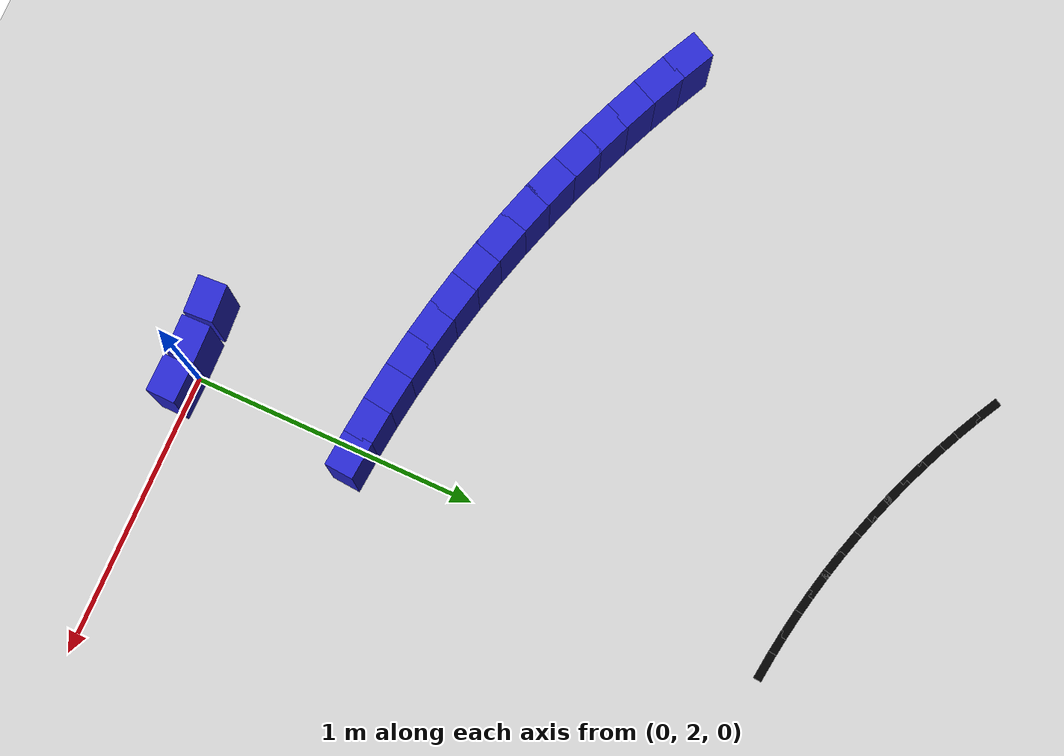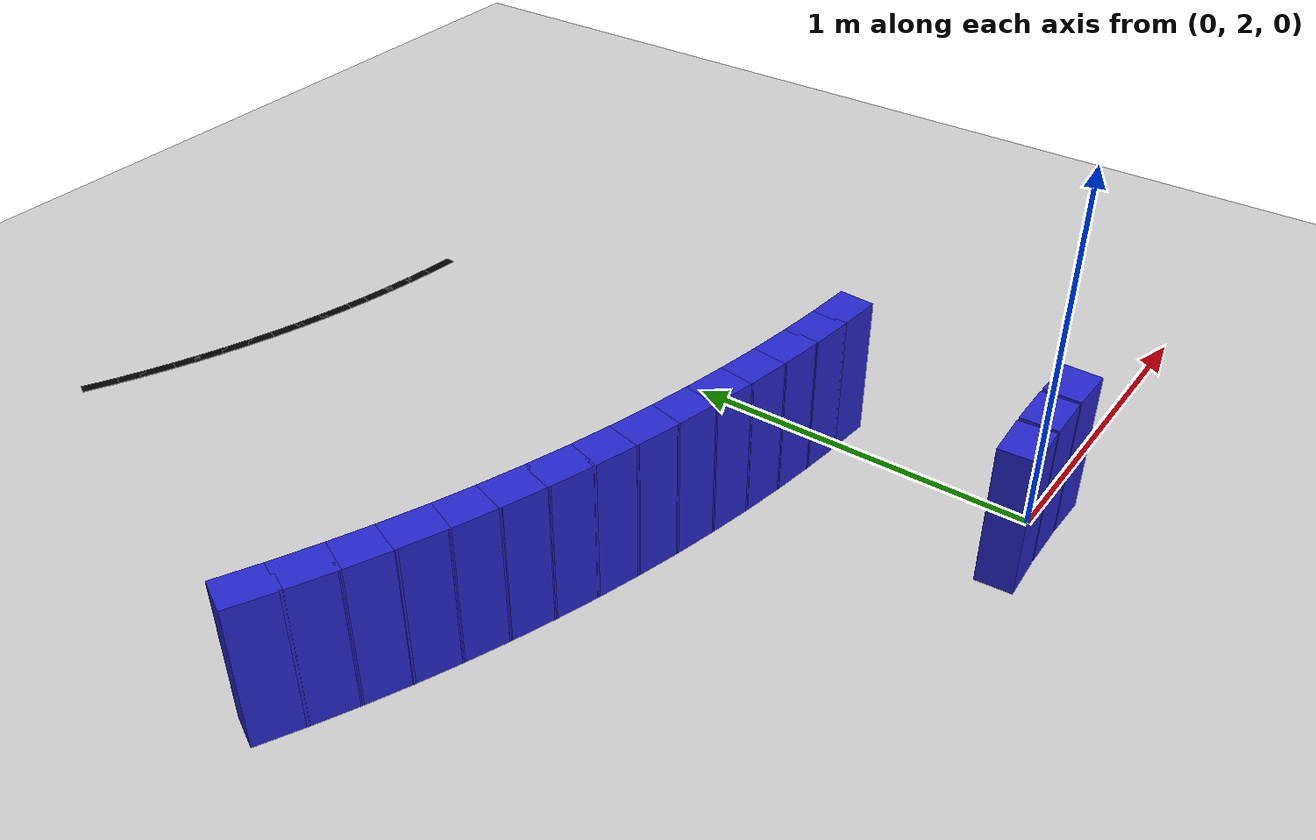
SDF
<sdf version="1.6">
 <world name="new_race_track">
  <include><uri>model://ground_plane</uri></include>
  <include><uri>model://sun</uri></include>
  <model name="race_track">
   <static>true</static>
   <link name="wall_link_118">
    <collision name="c"><geometry><box><size>0.1305 0.1 0.4</size></box></geometry></collision>
    <visual name="v">
     <geometry><box><size>0.1305 0.1 0.4</size></box></geometry>
     <material><ambient>0.15 0.15 0.8 1</ambient><diffuse>0.15 0.15 0.8 1</diffuse></material>
    </visual>
    <pose>-0.2113 1.9732 0.200 0 0 0.0604</pose>
   </link>
   <link name="wall_link_119">
    <collision name="c"><geometry><box><size>0.1305 0.1 0.4</size></box></geometry></collision>
    <visual name="v">
     <geometry><box><size>0.1305 0.1 0.4</size></box></geometry>
     <material><ambient>0.15 0.15 0.8 1</ambient><diffuse>0.15 0.15 0.8 1</diffuse></material>
    </visual>
    <pose>-0.0705 1.9789 0.200 0 0 0.0201</pose>
   </link>
   <link name="wall_link_120">
    <collision name="c"><geometry><box><size>0.1305 0.1 0.4</size></box></geometry></collision>
    <visual name="v">
     <geometry><box><size>0.1305 0.1 0.4</size></box></geometry>
     <material><ambient>0.15 0.15 0.8 1</ambient><diffuse>0.15 0.15 0.8 1</diffuse></material>
    </visual>
    <pose>0.0705 1.9789 0.200 0 0 -0.0201</pose>
   </link>
   <link name="wall_link_328">
    <collision name="c"><geometry><box><size>0.1314 0.1 0.4</size></box></geometry></collision>
    <visual name="v">
     <geometry><box><size>0.1314 0.1 0.4</size></box></geometry>
     <material><ambient>0.15 0.15 0.8 1</ambient><diffuse>0.15 0.15 0.8 1</diffuse></material>
    </visual>
    <pose>0.0529 2.6042 0.200 0 0 3.0601</pose>
   </link>
   <link name="wall_link_329">
    <collision name="c"><geometry><box><size>0.1314 0.1 0.4</size></box></geometry></collision>
    <visual name="v">
     <geometry><box><size>0.1314 0.1 0.4</size></box></geometry>
     <material><ambient>0.15 0.15 0.8 1</ambient><diffuse>0.15 0.15 0.8 1</diffuse></material>
    </visual>
    <pose>-0.0687 2.6157 0.200 0 0 3.0330</pose>
   </link>
   <link name="wall_link_330">
    <collision name="c"><geometry><box><size>0.1314 0.1 0.4</size></box></geometry></collision>
    <visual name="v">
     <geometry><box><size>0.1314 0.1 0.4</size></box></geometry>
     <material><ambient>0.15 0.15 0.8 1</ambient><diffuse>0.15 0.15 0.8 1</diffuse></material>
    </visual>
    <pose>-0.1900 2.6306 0.200 0 0 3.0058</pose>
   </link>
   <link name="wall_link_331">
    <collision name="c"><geometry><box><size>0.1314 0.1 0.4</size></box></geometry></collision>
    <visual name="v">
     <geometry><box><size>0.1314 0.1 0.4</size></box></geometry>
     <material><ambient>0.15 0.15 0.8 1</ambient><diffuse>0.15 0.15 0.8 1</diffuse></material>
    </visual>
    <pose>-0.3108 2.6488 0.200 0 0 2.9787</pose>
   </link>
   <link name="wall_link_332">
    <collision name="c"><geometry><box><size>0.1314 0.1 0.4</size></box></geometry></collision>
    <visual name="v">
     <geometry><box><size>0.1314 0.1 0.4</size></box></geometry>
     <material><ambient>0.15 0.15 0.8 1</ambient><diffuse>0.15 0.15 0.8 1</diffuse></material>
    </visual>
    <pose>-0.4311 2.6703 0.200 0 0 2.9515</pose>
   </link>
   <link name="wall_link_333">
    <collision name="c"><geometry><box><size>0.1314 0.1 0.4</size></box></geometry></collision>
    <visual name="v">
     <geometry><box><size>0.1314 0.1 0.4</size></box></geometry>
     <material><ambient>0.15 0.15 0.8 1</ambient><diffuse>0.15 0.15 0.8 1</diffuse></material>
    </visual>
    <pose>-0.5507 2.6950 0.200 0 0 2.9244</pose>
   </link>
   <link name="wall_link_334">
    <collision name="c"><geometry><box><size>0.1314 0.1 0.4</size></box></geometry></collision>
    <visual name="v">
     <geometry><box><size>0.1314 0.1 0.4</size></box></geometry>
     <material><ambient>0.15 0.15 0.8 1</ambient><diffuse>0.15 0.15 0.8 1</diffuse></material>
    </visual>
    <pose>-0.6696 2.7229 0.200 0 0 2.8972</pose>
   </link>
   <link name="wall_link_335">
    <collision name="c"><geometry><box><size>0.1314 0.1 0.4</size></box></geometry></collision>
    <visual name="v">
     <geometry><box><size>0.1314 0.1 0.4</size></box></geometry>
     <material><ambient>0.15 0.15 0.8 1</ambient><diffuse>0.15 0.15 0.8 1</diffuse></material>
    </visual>
    <pose>-0.7877 2.7541 0.200 0 0 2.8701</pose>
   </link>
   <link name="wall_link_336">
    <collision name="c"><geometry><box><size>0.1314 0.1 0.4</size></box></geometry></collision>
    <visual name="v">
     <geometry><box><size>0.1314 0.1 0.4</size></box></geometry>
     <material><ambient>0.15 0.15 0.8 1</ambient><diffuse>0.15 0.15 0.8 1</diffuse></material>
    </visual>
    <pose>-0.9050 2.7884 0.200 0 0 2.8429</pose>
   </link>
   <link name="wall_link_337">
    <collision name="c"><geometry><box><size>0.1314 0.1 0.4</size></box></geometry></collision>
    <visual name="v">
     <geometry><box><size>0.1314 0.1 0.4</size></box></geometry>
     <material><ambient>0.15 0.15 0.8 1</ambient><diffuse>0.15 0.15 0.8 1</diffuse></material>
    </visual>
    <pose>-1.0212 2.8259 0.200 0 0 2.8158</pose>
   </link>
   <link name="wall_link_338">
    <collision name="c"><geometry><box><size>0.1314 0.1 0.4</size></box></geometry></collision>
    <visual name="v">
     <geometry><box><size>0.1314 0.1 0.4</size></box></geometry>
     <material><ambient>0.15 0.15 0.8 1</ambient><diffuse>0.15 0.15 0.8 1</diffuse></material>
    </visual>
    <pose>-1.1364 2.8666 0.200 0 0 2.7886</pose>
   </link>
   <link name="wall_link_339">
    <collision name="c"><geometry><box><size>0.1314 0.1 0.4</size></box></geometry></collision>
    <visual name="v">
     <geometry><box><size>0.1314 0.1 0.4</size></box></geometry>
     <material><ambient>0.15 0.15 0.8 1</ambient><diffuse>0.15 0.15 0.8 1</diffuse></material>
    </visual>
    <pose>-1.2505 2.9104 0.200 0 0 2.7615</pose>
   </link>
   <link name="wall_link_340">
    <collision name="c"><geometry><box><size>0.1314 0.1 0.4</size></box></geometry></collision>
    <visual name="v">
     <geometry><box><size>0.1314 0.1 0.4</size></box></geometry>
     <material><ambient>0.15 0.15 0.8 1</ambient><diffuse>0.15 0.15 0.8 1</diffuse></material>
    </visual>
    <pose>-1.3633 2.9572 0.200 0 0 2.7343</pose>
   </link>
   <link name="wall_link_341">
    <collision name="c"><geometry><box><size>0.1314 0.1 0.4</size></box></geometry></collision>
    <visual name="v">
     <geometry><box><size>0.1314 0.1 0.4</size></box></geometry>
     <material><ambient>0.15 0.15 0.8 1</ambient><diffuse>0.15 0.15 0.8 1</diffuse></material>
    </visual>
    <pose>-1.4748 3.0071 0.200 0 0 2.7072</pose>
   </link>
   <link name="wall_link_342">
    <collision name="c"><geometry><box><size>0.1314 0.1 0.4</size></box></geometry></collision>
    <visual name="v">
     <geometry><box><size>0.1314 0.1 0.4</size></box></geometry>
     <material><ambient>0.15 0.15 0.8 1</ambient><diffuse>0.15 0.15 0.8 1</diffuse></material>
    </visual>
    <pose>-1.5849 3.0601 0.200 0 0 2.6801</pose>
   </link>
   <link name="line_link_1437">
    <visual name="v">
     <geometry><box><size>0.1014 0.03 0.002</size></box></geometry>
     <material><ambient>0 0 0 1</ambient><diffuse>0 0 0 1</diffuse></material>
    </visual>
    <pose>0.0938 4.1069 0.002 0 0 3.0330</pose>
   </link>
   <link name="line_link_1438">
    <visual name="v">
     <geometry><box><size>0.1014 0.03 0.002</size></box></geometry>
     <material><ambient>0 0 0 1</ambient><diffuse>0 0 0 1</diffuse></material>
    </visual>
    <pose>0.0130 4.1168 0.002 0 0 3.0058</pose>
   </link>
   <link name="line_link_1439">
    <visual name="v">
     <geometry><box><size>0.1014 0.03 0.002</size></box></geometry>
     <material><ambient>0 0 0 1</ambient><diffuse>0 0 0 1</diffuse></material>
    </visual>
    <pose>-0.0675 4.1290 0.002 0 0 2.9787</pose>
   </link>
   <link name="line_link_1440">
    <visual name="v">
     <geometry><box><size>0.1014 0.03 0.002</size></box></geometry>
     <material><ambient>0 0 0 1</ambient><diffuse>0 0 0 1</diffuse></material>
    </visual>
    <pose>-0.1477 4.1432 0.002 0 0 2.9515</pose>
   </link>
   <link name="line_link_1441">
    <visual name="v">
     <geometry><box><size>0.1014 0.03 0.002</size></box></geometry>
     <material><ambient>0 0 0 1</ambient><diffuse>0 0 0 1</diffuse></material>
    </visual>
    <pose>-0.2275 4.1597 0.002 0 0 2.9244</pose>
   </link>
   <link name="line_link_1442">
    <visual name="v">
     <geometry><box><size>0.1014 0.03 0.002</size></box></geometry>
     <material><ambient>0 0 0 1</ambient><diffuse>0 0 0 1</diffuse></material>
    </visual>
    <pose>-0.3067 4.1783 0.002 0 0 2.8972</pose>
   </link>
   <link name="line_link_1443">
    <visual name="v">
     <geometry><box><size>0.1014 0.03 0.002</size></box></geometry>
     <material><ambient>0 0 0 1</ambient><diffuse>0 0 0 1</diffuse></material>
    </visual>
    <pose>-0.3855 4.1991 0.002 0 0 2.8701</pose>
   </link>
   <link name="line_link_1444">
    <visual name="v">
     <geometry><box><size>0.1014 0.03 0.002</size></box></geometry>
     <material><ambient>0 0 0 1</ambient><diffuse>0 0 0 1</diffuse></material>
    </visual>
    <pose>-0.4636 4.2220 0.002 0 0 2.8429</pose>
   </link>
   <link name="line_link_1445">
    <visual name="v">
     <geometry><box><size>0.1014 0.03 0.002</size></box></geometry>
     <material><ambient>0 0 0 1</ambient><diffuse>0 0 0 1</diffuse></material>
    </visual>
    <pose>-0.5411 4.2470 0.002 0 0 2.8158</pose>
   </link>
   <link name="line_link_1446">
    <visual name="v">
     <geometry><box><size>0.1014 0.03 0.002</size></box></geometry>
     <material><ambient>0 0 0 1</ambient><diffuse>0 0 0 1</diffuse></material>
    </visual>
    <pose>-0.6179 4.2741 0.002 0 0 2.7886</pose>
   </link>
   <link name="line_link_1447">
    <visual name="v">
     <geometry><box><size>0.1014 0.03 0.002</size></box></geometry>
     <material><ambient>0 0 0 1</ambient><diffuse>0 0 0 1</diffuse></material>
    </visual>
    <pose>-0.6940 4.3033 0.002 0 0 2.7615</pose>
   </link>
   <link name="line_link_1448">
    <visual name="v">
     <geometry><box><size>0.1014 0.03 0.002</size></box></geometry>
     <material><ambient>0 0 0 1</ambient><diffuse>0 0 0 1</diffuse></material>
    </visual>
    <pose>-0.7692 4.3346 0.002 0 0 2.7343</pose>
   </link>
   <link name="line_link_1449">
    <visual name="v">
     <geometry><box><size>0.1014 0.03 0.002</size></box></geometry>
     <material><ambient>0 0 0 1</ambient><diffuse>0 0 0 1</diffuse></material>
    </visual>
    <pose>-0.8435 4.3678 0.002 0 0 2.7072</pose>
   </link>
   <link name="line_link_1450">
    <visual name="v">
     <geometry><box><size>0.1014 0.03 0.002</size></box></geometry>
     <material><ambient>0 0 0 1</ambient><diffuse>0 0 0 1</diffuse></material>
    </visual>
    <pose>-0.9169 4.4031 0.002 0 0 2.6801</pose>
   </link>
   <link name="line_link_1451">
    <visual name="v">
     <geometry><box><size>0.1014 0.03 0.002</size></box></geometry>
     <material><ambient>0 0 0 1</ambient><diffuse>0 0 0 1</diffuse></material>
    </visual>
    <pose>-0.9893 4.4404 0.002 0 0 2.6529</pose>
   </link>
  </model>
 </world>
</sdf>
